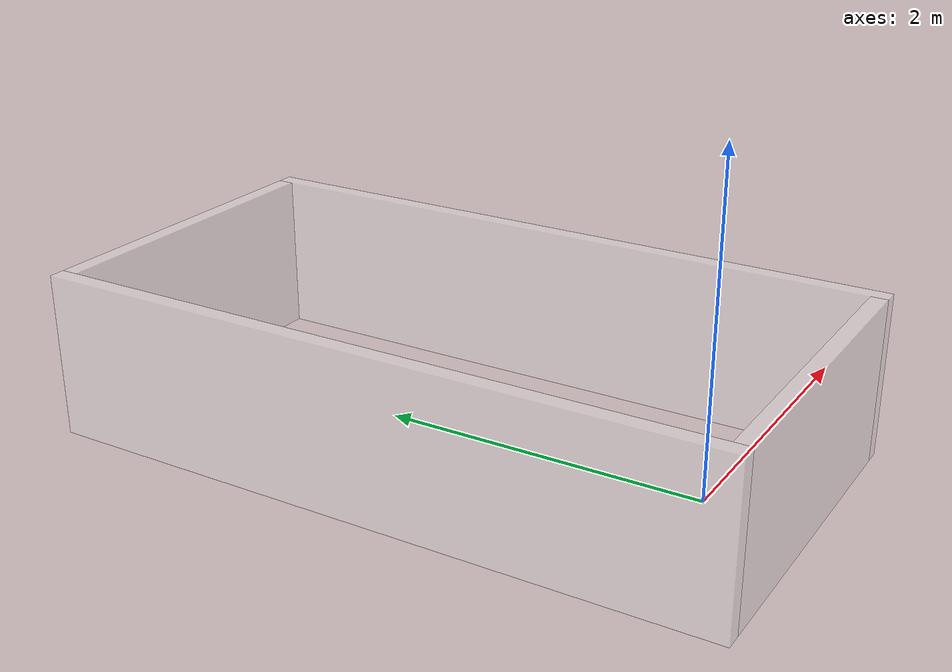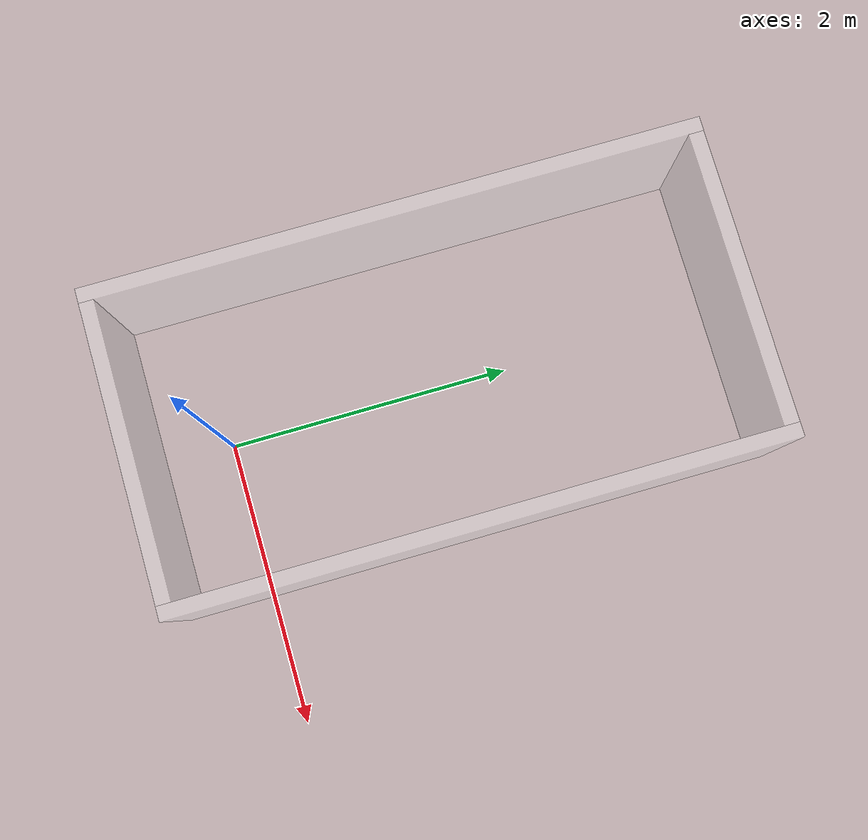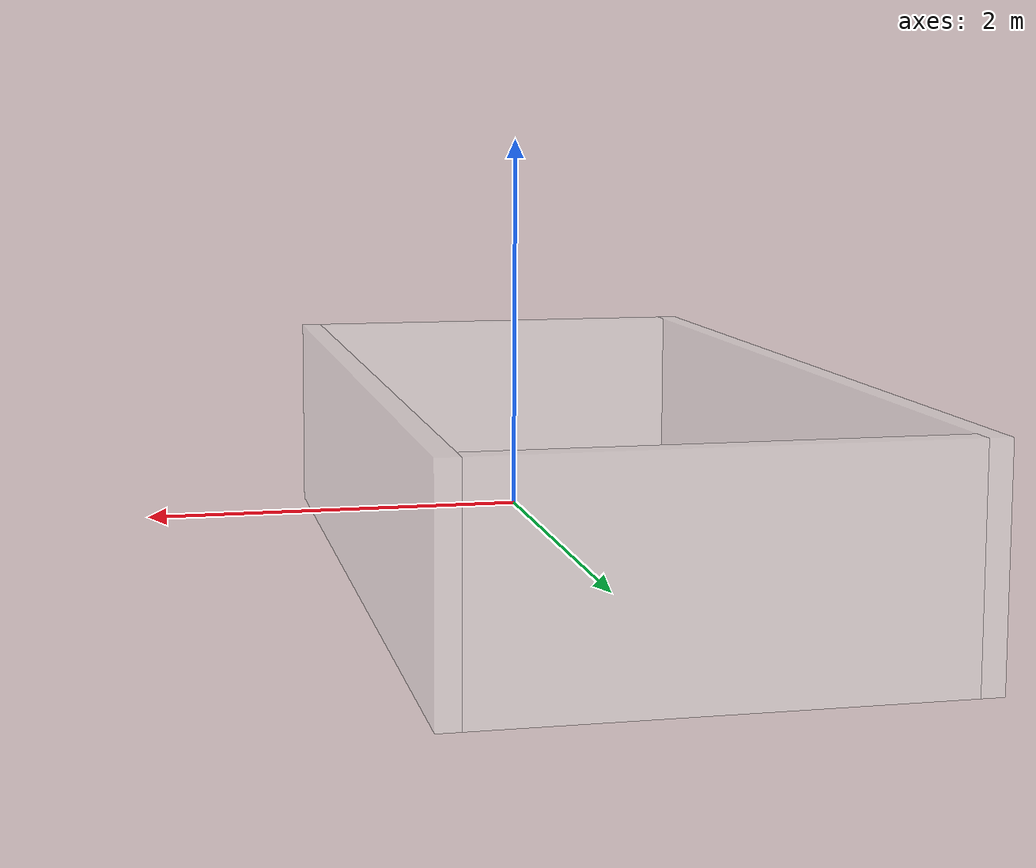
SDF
<?xml version="1.0" ?>
<sdf version="1.9">
	<model name="walls">
		<static>true</static>
		<link name="link_wall_nest">
			<pose>0 -0.55 0.45 0 0 0</pose>
			<visual name="visual_nest_wall">
				<geometry>
					<box>
						<size>2.0 0.1 1</size>
					</box>
				</geometry>
				<material>
					<diffuse>1 1 1 0.3</diffuse>
				</material>
			</visual>
			<collision name="collision_nest_wall">
				<geometry>
					<box>
						<size>2.0 0.1 1</size>
					</box>
				</geometry>
			</collision>
		</link>
		<link name="link_wall_source">
			<pose relative_to="link_wall_nest">0 4.097551000253279 0 0 0 0</pose>
			<visual name="visual_source_wall">
				<geometry>
					<box>
						<size>2.0 0.1 1</size>
					</box>
				</geometry>
				<material>
					<diffuse>1 1 1 0.3</diffuse>
				</material>
			</visual>
			<collision name="collision_source_wall">
				<geometry>
					<box>
						<size>2.0 0.1 1</size>
					</box>
				</geometry>
			</collision>
		</link>
		<link name="link_edge_wall1">
			<pose relative_to="link_wall_nest">1.05 2.0487755001266397 0 0 0 1.5707963267948966</pose>
			<visual name="visual_edge_wall1">
				<geometry>
					<box>
						<size>4.19755100025328 0.1 1</size>
					</box>
				</geometry>
				<material>
					<diffuse>1 1 1 0.3</diffuse>
				</material>
			</visual>
			<collision name="collision_edge_wall1">
				<geometry>
					<box>
						<size>4.19755100025328 0.1 1</size>
					</box>
				</geometry>
			</collision>
		</link>
		<link name="link_edge_wall2">
			<pose relative_to="link_edge_wall1">0 2.0999999999999996 0 0 0 0</pose>
			<visual name="visual_edge_wall2">
				<geometry>
					<box>
						<size>4.19755100025328 0.1 1</size>
					</box>
				</geometry>
				<material>
					<diffuse>1 1 1 0.3</diffuse>
				</material>
			</visual>
			<collision name="collision_edge_wall2">
				<geometry>
					<box>
						<size>4.19755100025328 0.1 1</size>
					</box>
				</geometry>
			</collision>
		</link>
	</model>
</sdf>
